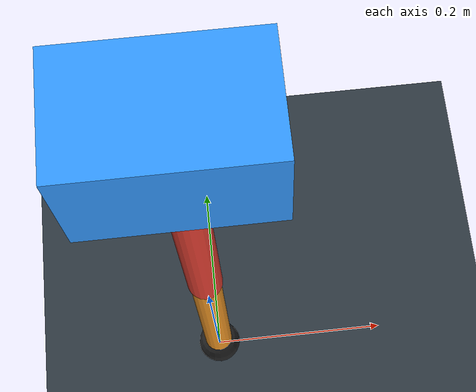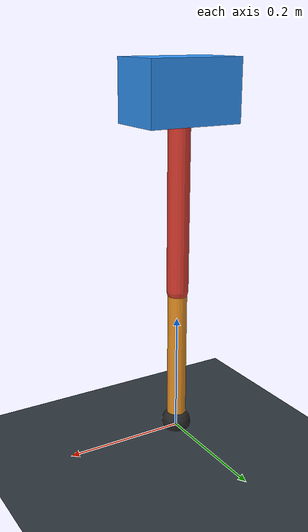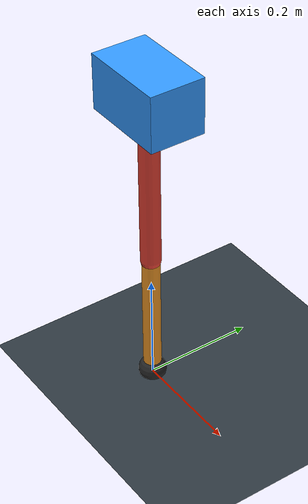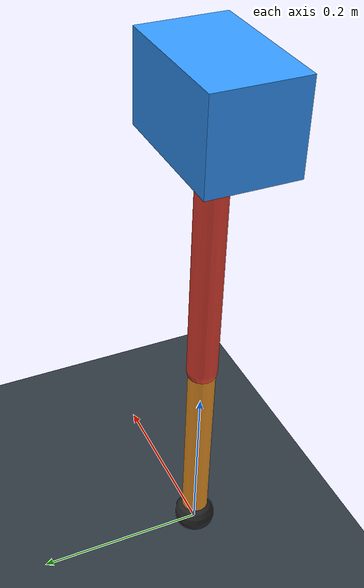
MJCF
<mujoco model="single_axis_two_bar">
  <compiler angle="radian" inertiafromgeom="true"/>
  <option timestep="0.001" integrator="implicitfast" gravity="0 0 -9.81"/>
  <default>
    <joint damping="0.08"/>
    <geom friction="1.2 0.01 0.0001" condim="3"/>
  </default>
  <worldbody>
    <geom name="floor" type="plane" size="5 5 0.1" rgba="0.18 0.22 0.25 1"/>
    <body name="carriage" pos="0 0 0.5738271224738398">
      <joint name="pole_slide" type="slide" axis="0 0 1"/>
      <geom name="payload" type="box" size="0.08 0.05 0.05" mass="3.8578975135574636" rgba="0.2 0.6 1 1"/>
      <body name="thigh" pos="0 0 0">
        <joint name="hip" type="hinge" axis="0 1 0"/>
        <geom name="thigh_link" type="capsule" fromto="0 0 0 0 0 -0.32441590426043776" size="0.018" mass="0.23115061856352132" rgba="0.9 0.25 0.2 1"/>
        <body name="shank" pos="0 0 -0.32441590426043776">
          <joint name="knee" type="hinge" axis="0 1 0"/>
          <geom name="shank_link" type="capsule" fromto="0 0 0 0 0 -0.2413852529290879" size="0.016" mass="0.17199018233667723" rgba="0.95 0.6 0.15 1"/>
          <geom name="foot" type="sphere" pos="0 0 -0.2413852529290879" size="0.025" mass="0.03" rgba="0.15 0.15 0.15 1"/>
          <site name="toe" pos="0 0 -0.2413852529290879" size="0.008"/>
        </body>
      </body>
    </body>
  </worldbody>
  <actuator>
    <motor name="hip_motor" joint="hip" ctrlrange="-51.47144458961817 51.47144458961817"/>
    <motor name="knee_motor" joint="knee" ctrlrange="-145.11143440605673 145.11143440605673"/>
  </actuator>
</mujoco>
